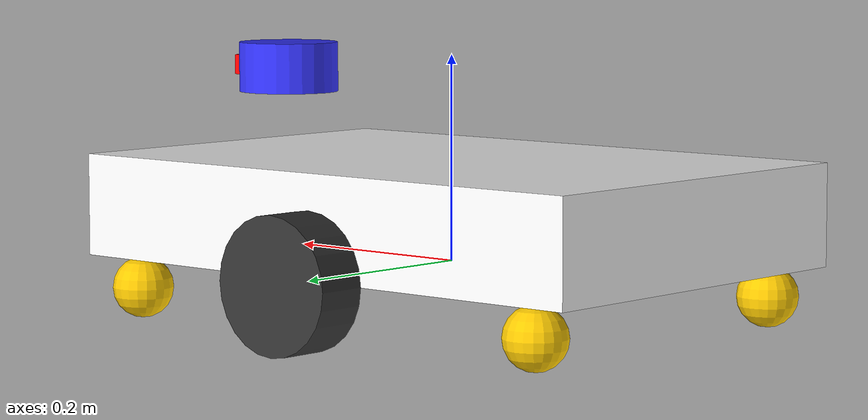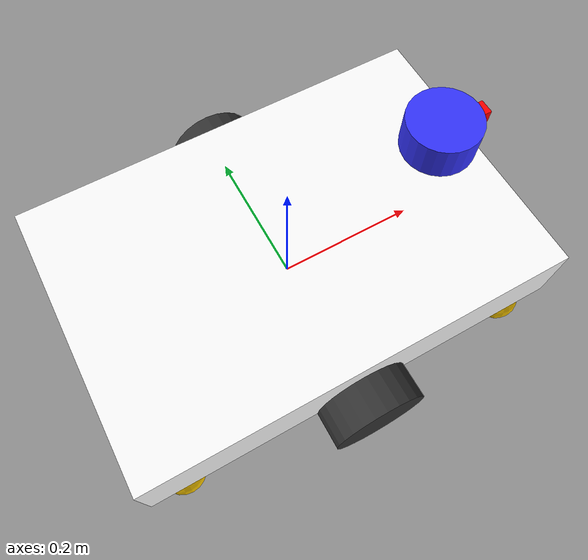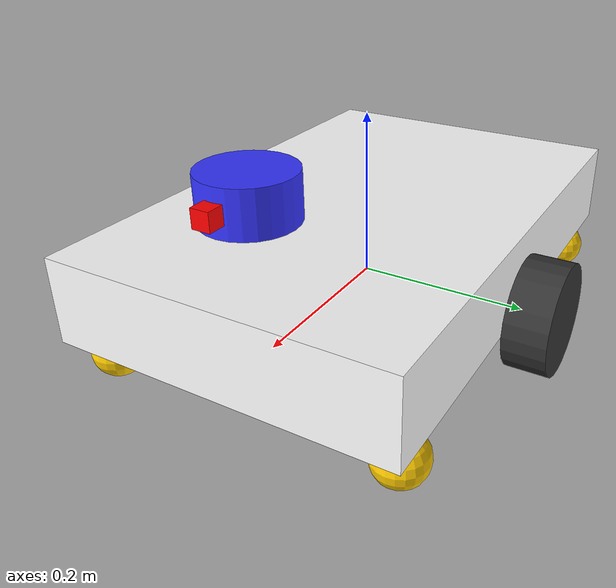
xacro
<?xml version="1.0"?>

<robot
  name="bumbleb"
  xmlns:xacro="http://www.ros.org/wiki/xacro">

  <!-- Common definitions                                        -->

  <xacro:include
    filename="common/materials.xacro"/>

  <xacro:include
    filename="common/inertial_macros.xacro"/>

  <!-- Robot structure                                           -->

  <xacro:include
    filename="base/base.xacro"/>

  <xacro:include
    filename="wheels/wheels.xacro"/>

  <!-- Sensors                                                   -->

  <xacro:include
    filename="sensors/lidar.xacro"/>

  <!-- Hardware selection                                        -->

  <xacro:arg
    name="use_sim"
    default="false"/>

  <xacro:if value="$(arg use_sim)">

    <xacro:include
      filename="control/simulation.xacro"/>

  </xacro:if>

  <xacro:unless value="$(arg use_sim)">

    <xacro:include
      filename="control/real_hardware.xacro"/>

  </xacro:unless>

</robot>

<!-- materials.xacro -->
<robot xmlns:xacro="http://www.ros.org/wiki/xacro">

  <material name="white">
    <color rgba="1 1 1 1"/>
  </material>

  <material name="orange">
    <color rgba="1 0.3 0.1 1"/>
  </material>

  <material name="red">
    <color rgba="1 0 0 1"/>
  </material>

  <material name="blue">
    <color rgba="0.2 0.2 1 1"/>
  </material>

  <material name="black">
    <color rgba="0 0 0 1"/>
  </material>

  <material name="dark_gray">
    <color rgba="0.2 0.2 0.2 1"/>
  </material>

  <material name="light_gray">
    <color rgba="0.7 0.7 0.7 1"/>
  </material>

  <material name="silver">
    <color rgba="0.8 0.8 0.8 1"/>
  </material>

  <material name="yellow">
    <color rgba="1.0 0.8 0.0 1.0"/>
  </material>

</robot>

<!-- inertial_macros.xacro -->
<robot xmlns:xacro="http://www.ros.org/wiki/xacro">

  <xacro:macro name="inertial_sphere"
               params="mass radius *origin">

    <inertial>
      <xacro:insert_block name="origin"/>

      <mass value="${mass}"/>

      <inertia
        ixx="${(2.0 / 5.0) * mass * radius * radius}"
        ixy="0.0"
        ixz="0.0"
        iyy="${(2.0 / 5.0) * mass * radius * radius}"
        iyz="0.0"
        izz="${(2.0 / 5.0) * mass * radius * radius}"/>
    </inertial>

  </xacro:macro>

  <xacro:macro name="inertial_box"
               params="mass x y z *origin">

    <inertial>
      <xacro:insert_block name="origin"/>

      <mass value="${mass}"/>

      <inertia
        ixx="${(mass / 12.0) * (y * y + z * z)}"
        ixy="0.0"
        ixz="0.0"
        iyy="${(mass / 12.0) * (x * x + z * z)}"
        iyz="0.0"
        izz="${(mass / 12.0) * (x * x + y * y)}"/>
    </inertial>

  </xacro:macro>

  <xacro:macro name="inertial_cylinder"
               params="mass length radius *origin">

    <inertial>
      <xacro:insert_block name="origin"/>

      <mass value="${mass}"/>

      <inertia
        ixx="${(mass / 12.0) *
              (3.0 * radius * radius + length * length)}"
        ixy="0.0"
        ixz="0.0"
        iyy="${(mass / 12.0) *
              (3.0 * radius * radius + length * length)}"
        iyz="0.0"
        izz="${0.5 * mass * radius * radius}"/>
    </inertial>

  </xacro:macro>

</robot>

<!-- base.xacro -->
<robot xmlns:xacro="http://www.ros.org/wiki/xacro">

  <xacro:property name="chassis_length" value="0.60"/>
  <xacro:property name="chassis_width" value="0.40"/>
  <xacro:property name="chassis_height" value="0.10"/>

  <!-- TODO:
       Replace with verified physical mass when available.
  -->
  <xacro:property name="chassis_mass" value="0.1"/>

  <!-- BASE LINK -->

  <link name="base_link"/>

  <!-- CHASSIS -->

  <joint
    name="chassis_joint"
    type="fixed">

    <parent link="base_link"/>
    <child link="chassis"/>

    <!-- Chassis center is half its height above ground plane -->
    <origin
      xyz="0 0 ${chassis_height / 2.0}"
      rpy="0 0 0"/>

  </joint>

  <link name="chassis">

    <visual>

      <geometry>
        <box
          size="${chassis_length}
                ${chassis_width}
                ${chassis_height}"/>
      </geometry>

      <material name="white"/>

    </visual>

    <collision>

      <geometry>
        <box
          size="${chassis_length}
                ${chassis_width}
                ${chassis_height}"/>
      </geometry>

    </collision>

    <xacro:inertial_box
      mass="${chassis_mass}"
      x="${chassis_length}"
      y="${chassis_width}"
      z="${chassis_height}">

      <origin
        xyz="0 0 0"
        rpy="0 0 0"/>

    </xacro:inertial_box>

  </link>

  <gazebo reference="chassis">
    <material>Gazebo/White</material>
  </gazebo>

</robot>

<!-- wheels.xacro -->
<robot xmlns:xacro="http://www.ros.org/wiki/xacro">

  <!-- WHEEL GEOMETRY PARAMETERS                                 -->

  <xacro:arg name="wheel_radius" default="0.0655"/>
  <xacro:arg name="wheel_separation" default="0.45"/>

  <xacro:property
    name="wheel_radius"
    value="$(arg wheel_radius)"/>

  <xacro:property
    name="wheel_width"
    value="0.05"/>

  <xacro:property
    name="wheel_separation"
    value="$(arg wheel_separation)"/>

  <!-- Temporary mass until physical values are available -->
  <xacro:property
    name="wheel_mass"
    value="0.1"/>

  <!-- LEFT DRIVE WHEEL                                         -->

  <joint
    name="left_joint"
    type="continuous">

    <parent link="base_link"/>
    <child link="left_wheel"/>

    <origin
      xyz="0 -0.225 0"
      rpy="1.57079632679 0 0"/>

    <axis xyz="0 0 1"/>

  </joint>

  <link name="left_wheel">

    <visual>
      <geometry>
        <cylinder
          radius="${wheel_radius}"
          length="${wheel_width}"/>
      </geometry>

      <material name="dark_gray"/>
    </visual>

    <collision>
      <geometry>
        <cylinder
          radius="${wheel_radius}"
          length="${wheel_width}"/>
      </geometry>
    </collision>

    <xacro:inertial_cylinder
      mass="${wheel_mass}"
      length="${wheel_width}"
      radius="${wheel_radius}">

      <origin
        xyz="0 0 0"
        rpy="0 0 0"/>

    </xacro:inertial_cylinder>

  </link>

  <!-- RIGHT DRIVE WHEEL                                        -->

  <joint
    name="right_joint"
    type="continuous">

    <parent link="base_link"/>
    <child link="right_wheel"/>

    <origin
      xyz="0 0.225 0"
      rpy="1.57079632679 0 0"/>

    <axis xyz="0 0 1"/>

  </joint>

  <link name="right_wheel">

    <visual>
      <geometry>
        <cylinder
          radius="${wheel_radius}"
          length="${wheel_width}"/>
      </geometry>

      <material name="dark_gray"/>
    </visual>

    <collision>
      <geometry>
        <cylinder
          radius="${wheel_radius}"
          length="${wheel_width}"/>
      </geometry>

    </collision>

    <xacro:inertial_cylinder
      mass="${wheel_mass}"
      length="${wheel_width}"
      radius="${wheel_radius}">

      <origin
        xyz="0 0 0"
        rpy="0 0 0"/>

    </xacro:inertial_cylinder>

  </link>

  <!-- CASTERS                                                  -->

  <xacro:property
    name="caster_radius"
    value="0.03"/>

  <xacro:property
    name="caster_mass"
    value="0.1"/>

  <!-- FRONT LEFT -->

  <joint
    name="front_left_caster_joint"
    type="fixed">

    <parent link="base_link"/>
    <child link="front_left_caster"/>

    <origin
      xyz="0.25 0.175 -${caster_radius}"
      rpy="0 0 0"/>

  </joint>

  <link name="front_left_caster">

    <visual>
      <geometry>
        <sphere radius="${caster_radius}"/>
      </geometry>

      <material name="yellow"/>
    </visual>

    <collision>
      <geometry>
        <sphere radius="${caster_radius}"/>
      </geometry>
    </collision>

    <xacro:inertial_sphere
      mass="${caster_mass}"
      radius="${caster_radius}">

      <origin xyz="0 0 0" rpy="0 0 0"/>

    </xacro:inertial_sphere>

  </link>

  <gazebo reference="front_left_caster">
    <material>Gazebo/Yellow</material>
  </gazebo>

  <!-- FRONT RIGHT -->

  <joint
    name="front_right_caster_joint"
    type="fixed">

    <parent link="base_link"/>
    <child link="front_right_caster"/>

    <origin
      xyz="0.25 -0.175 -${caster_radius}"
      rpy="0 0 0"/>

  </joint>

  <link name="front_right_caster">

    <visual>
      <geometry>
        <sphere radius="${caster_radius}"/>
      </geometry>

      <material name="yellow"/>
    </visual>

    <collision>
      <geometry>
        <sphere radius="${caster_radius}"/>
      </geometry>
    </collision>

    <xacro:inertial_sphere
      mass="${caster_mass}"
      radius="${caster_radius}">

      <origin xyz="0 0 0" rpy="0 0 0"/>

    </xacro:inertial_sphere>

  </link>

  <gazebo reference="front_right_caster">
    <material>Gazebo/Yellow</material>
  </gazebo>

  <!-- REAR LEFT -->

  <joint
    name="rear_left_caster_joint"
    type="fixed">

    <parent link="base_link"/>
    <child link="rear_left_caster"/>

    <origin
      xyz="-0.25 0.175 -${caster_radius}"
      rpy="0 0 0"/>

  </joint>

  <link name="rear_left_caster">

    <visual>
      <geometry>
        <sphere radius="${caster_radius}"/>
      </geometry>

      <material name="yellow"/>
    </visual>

    <collision>
      <geometry>
        <sphere radius="${caster_radius}"/>
      </geometry>
    </collision>

    <xacro:inertial_sphere
      mass="${caster_mass}"
      radius="${caster_radius}">

      <origin xyz="0 0 0" rpy="0 0 0"/>

    </xacro:inertial_sphere>

  </link>

  <gazebo reference="rear_left_caster">
    <material>Gazebo/Yellow</material>
  </gazebo>

  <!-- REAR RIGHT -->

  <joint
    name="rear_right_caster_joint"
    type="fixed">

    <parent link="base_link"/>
    <child link="rear_right_caster"/>

    <origin
      xyz="-0.25 -0.175 -${caster_radius}"
      rpy="0 0 0"/>

  </joint>

  <link name="rear_right_caster">

    <visual>
      <geometry>
        <sphere radius="${caster_radius}"/>
      </geometry>

      <material name="yellow"/>
    </visual>

    <collision>
      <geometry>
        <sphere radius="${caster_radius}"/>
      </geometry>
    </collision>

    <xacro:inertial_sphere
      mass="${caster_mass}"
      radius="${caster_radius}">

      <origin xyz="0 0 0" rpy="0 0 0"/>

    </xacro:inertial_sphere>

  </link>

  <gazebo reference="rear_right_caster">
    <material>Gazebo/Yellow</material>
  </gazebo>

</robot>

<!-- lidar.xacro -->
<robot xmlns:xacro="http://www.ros.org/wiki/xacro">

  <!--
    LiDAR frame.

    The exact mounting position should be measured from the
    physical BumbleB robot.
  -->

  <xacro:property
    name="lidar_x"
    value="0.22"/>

  <xacro:property
    name="lidar_y"
    value="0.0"/>

  <xacro:property
    name="lidar_z"
    value="0.18"/>

  <joint
    name="lidar_joint"
    type="fixed">

    <parent link="base_link"/>
    <child link="lidar_link"/>

    <origin
      xyz="${lidar_x} ${lidar_y} ${lidar_z}"
      rpy="0 0 0"/>

  </joint>

  <link name="lidar_link">

    <!-- Temporary visualization geometry -->
    <visual>

      <geometry>
        <cylinder
          radius="0.05"
          length="0.05"/>
      </geometry>

      <material name="blue"/>

    </visual>

    <!-- Small marker showing the sensor's +X (forward / scan-zero) axis. -->
    <visual>
      <origin xyz="0.055 0 0" rpy="0 0 0"/>
      <geometry>
        <box size="0.025 0.020 0.020"/>
      </geometry>
      <material name="red"/>
    </visual>

    <!-- Temporary collision geometry -->
    <collision>

      <geometry>
        <cylinder
          radius="0.05"
          length="0.05"/>
      </geometry>

    </collision>

  </link>

  <gazebo reference="lidar_link">
    <material>Gazebo/Blue</material>
  </gazebo>

</robot>
